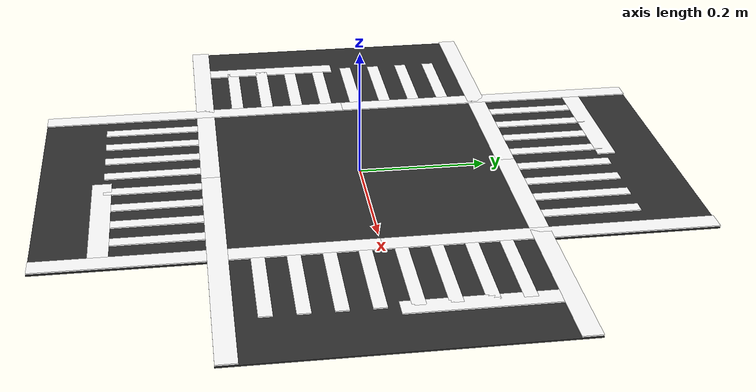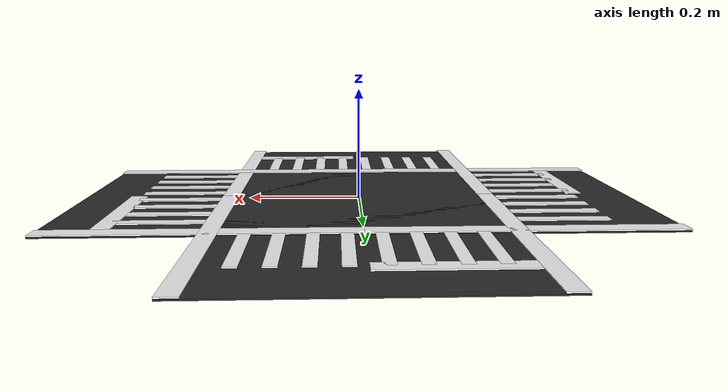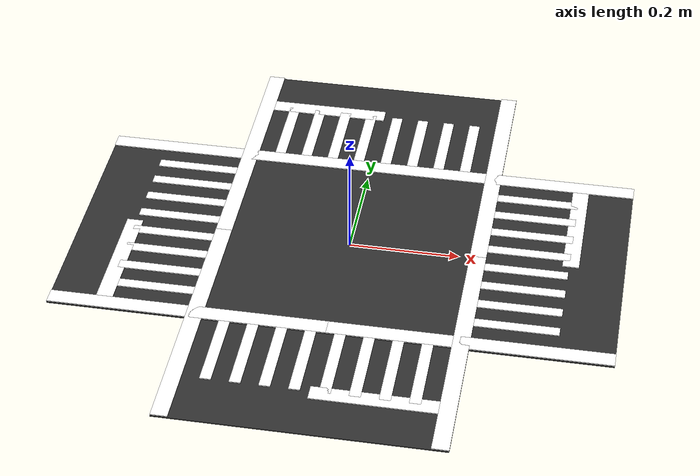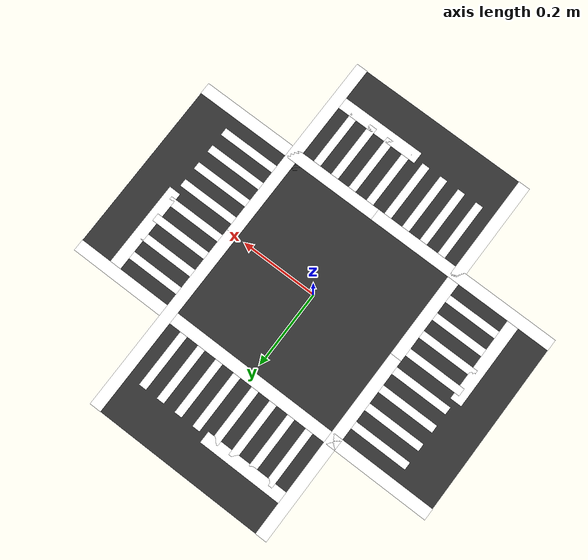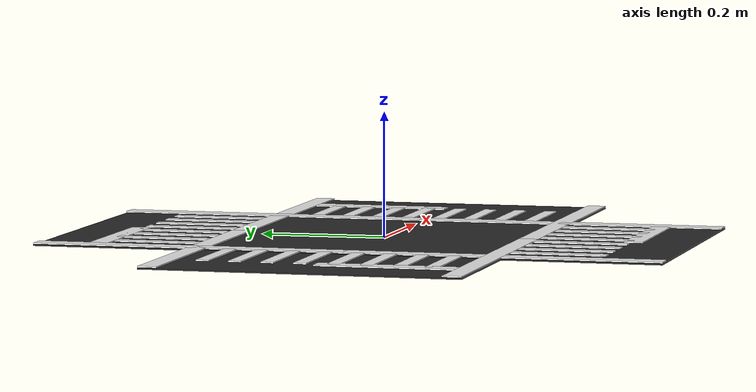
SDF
<?xml version="1.0"?>
<sdf version="1.6">
  <model name="track_cross_intersection">
    <static>true</static>
    <link name="link">

      <!-- Road surface: East-West arm (1.5 m × 0.5 m) -->
      <visual name="v001">
        <pose>0 0 0.001 0 0 0</pose>
        <geometry><box><size>1.000 0.50000 0.00200</size></box></geometry>
        <material>
          <ambient>0.180 0.180 0.180 1</ambient>
          <diffuse>0.180 0.180 0.180 1</diffuse>
          <specular>0.05 0.05 0.05 1</specular>
        </material>
      </visual>

      <!-- Road surface: North-South arm (0.5 m × 1.5 m) -->
      <visual name="v002">
        <pose>0 0 0.001 0 0 0</pose>
        <geometry><box><size>0.50000 1.0 0.00200</size></box></geometry>
        <material>
          <ambient>0.180 0.180 0.180 1</ambient>
          <diffuse>0.180 0.180 0.180 1</diffuse>
          <specular>0.05 0.05 0.05 1</specular>
        </material>
      </visual>

      <!-- North arm sidelines (run N-S along x = ±0.235) -->
      <visual name="v003"><pose>-0.235  0.250 0.004 0 0 0</pose><geometry><box><size>0.030 0.500 0.002</size></box></geometry><material><ambient>1 1 1 1</ambient><diffuse>1 1 1 1</diffuse><specular>0.1 0.1 0.1 1</specular></material></visual>
      <visual name="v004"><pose> 0.235  0.250 0.004 0 0 0</pose><geometry><box><size>0.030 0.500 0.002</size></box></geometry><material><ambient>1 1 1 1</ambient><diffuse>1 1 1 1</diffuse><specular>0.1 0.1 0.1 1</specular></material></visual>

      <!-- South arm sidelines -->
      <visual name="v005"><pose>-0.235 -0.250 0.004 0 0 0</pose><geometry><box><size>0.030 0.500 0.002</size></box></geometry><material><ambient>1 1 1 1</ambient><diffuse>1 1 1 1</diffuse><specular>0.1 0.1 0.1 1</specular></material></visual>
      <visual name="v006"><pose> 0.235 -0.250 0.004 0 0 0</pose><geometry><box><size>0.030 0.500 0.002</size></box></geometry><material><ambient>1 1 1 1</ambient><diffuse>1 1 1 1</diffuse><specular>0.1 0.1 0.1 1</specular></material></visual>

      <!-- East arm sidelines (run E-W along y = ±0.235) -->
      <visual name="v007"><pose> 0.250  0.235 0.004 0 0 0</pose><geometry><box><size>0.500 0.030 0.002</size></box></geometry><material><ambient>1 1 1 1</ambient><diffuse>1 1 1 1</diffuse><specular>0.1 0.1 0.1 1</specular></material></visual>
      <visual name="v008"><pose> 0.250 -0.235 0.004 0 0 0</pose><geometry><box><size>0.500 0.030 0.002</size></box></geometry><material><ambient>1 1 1 1</ambient><diffuse>1 1 1 1</diffuse><specular>0.1 0.1 0.1 1</specular></material></visual>

      <!-- West arm sidelines -->
      <visual name="v009"><pose>-0.250  0.235 0.004 0 0 0</pose><geometry><box><size>0.500 0.030 0.002</size></box></geometry><material><ambient>1 1 1 1</ambient><diffuse>1 1 1 1</diffuse><specular>0.1 0.1 0.1 1</specular></material></visual>
      <visual name="v010"><pose>-0.250 -0.235 0.004 0 0 0</pose><geometry><box><size>0.500 0.030 0.002</size></box></geometry><material><ambient>1 1 1 1</ambient><diffuse>1 1 1 1</diffuse><specular>0.1 0.1 0.1 1</specular></material></visual>

      <!-- North arm — stripes run E-W (perpendicular to N-S travel) -->
      <visual name="v011"><pose>-0.179  0.325 0.004 0 0 1.5708</pose><geometry><box><size>0.150 0.020 0.002</size></box></geometry><material><ambient>1 1 1 1</ambient><diffuse>1 1 1 1</diffuse><specular>0.1 0.1 0.1 1</specular></material></visual>
      <visual name="v012"><pose>-0.128  0.325 0.004 0 0 1.5708</pose><geometry><box><size>0.150 0.020 0.002</size></box></geometry><material><ambient>1 1 1 1</ambient><diffuse>1 1 1 1</diffuse><specular>0.1 0.1 0.1 1</specular></material></visual>
      <visual name="v013"><pose>-0.077  0.325 0.004 0 0 1.5708</pose><geometry><box><size>0.150 0.020 0.002</size></box></geometry><material><ambient>1 1 1 1</ambient><diffuse>1 1 1 1</diffuse><specular>0.1 0.1 0.1 1</specular></material></visual>
      <visual name="v014"><pose>-0.026  0.325 0.004 0 0 1.5708</pose><geometry><box><size>0.150 0.020 0.002</size></box></geometry><material><ambient>1 1 1 1</ambient><diffuse>1 1 1 1</diffuse><specular>0.1 0.1 0.1 1</specular></material></visual>
      <visual name="v015"><pose> 0.026  0.325 0.004 0 0 1.5708</pose><geometry><box><size>0.150 0.020 0.002</size></box></geometry><material><ambient>1 1 1 1</ambient><diffuse>1 1 1 1</diffuse><specular>0.1 0.1 0.1 1</specular></material></visual>
      <visual name="v016"><pose> 0.077  0.325 0.004 0 0 1.5708</pose><geometry><box><size>0.150 0.020 0.002</size></box></geometry><material><ambient>1 1 1 1</ambient><diffuse>1 1 1 1</diffuse><specular>0.1 0.1 0.1 1</specular></material></visual>
      <visual name="v017"><pose> 0.128  0.325 0.004 0 0 1.5708</pose><geometry><box><size>0.150 0.020 0.002</size></box></geometry><material><ambient>1 1 1 1</ambient><diffuse>1 1 1 1</diffuse><specular>0.1 0.1 0.1 1</specular></material></visual>
      <visual name="v018"><pose> 0.179  0.325 0.004 0 0 1.5708</pose><geometry><box><size>0.150 0.020 0.002</size></box></geometry><material><ambient>1 1 1 1</ambient><diffuse>1 1 1 1</diffuse><specular>0.1 0.1 0.1 1</specular></material></visual>
      <visual name="v019"><pose>-0.110 0.4025 0.004 0 0 0</pose><geometry><box><size>0.220 0.030 0.002</size></box></geometry><material><ambient>1 1 1 1</ambient><diffuse>1 1 1 1</diffuse><specular>0.1 0.1 0.1 1</specular></material></visual>

      <!-- South arm — mirror of North (y negated) -->
      <visual name="v020"><pose>-0.179 -0.325 0.004 0 0 1.5708</pose><geometry><box><size>0.150 0.020 0.002</size></box></geometry><material><ambient>1 1 1 1</ambient><diffuse>1 1 1 1</diffuse><specular>0.1 0.1 0.1 1</specular></material></visual>
      <visual name="v021"><pose>-0.128 -0.325 0.004 0 0 1.5708</pose><geometry><box><size>0.150 0.020 0.002</size></box></geometry><material><ambient>1 1 1 1</ambient><diffuse>1 1 1 1</diffuse><specular>0.1 0.1 0.1 1</specular></material></visual>
      <visual name="v022"><pose>-0.077 -0.325 0.004 0 0 1.5708</pose><geometry><box><size>0.150 0.020 0.002</size></box></geometry><material><ambient>1 1 1 1</ambient><diffuse>1 1 1 1</diffuse><specular>0.1 0.1 0.1 1</specular></material></visual>
      <visual name="v023"><pose>-0.026 -0.325 0.004 0 0 1.5708</pose><geometry><box><size>0.150 0.020 0.002</size></box></geometry><material><ambient>1 1 1 1</ambient><diffuse>1 1 1 1</diffuse><specular>0.1 0.1 0.1 1</specular></material></visual>
      <visual name="v024"><pose> 0.026 -0.325 0.004 0 0 1.5708</pose><geometry><box><size>0.150 0.020 0.002</size></box></geometry><material><ambient>1 1 1 1</ambient><diffuse>1 1 1 1</diffuse><specular>0.1 0.1 0.1 1</specular></material></visual>
      <visual name="v025"><pose> 0.077 -0.325 0.004 0 0 1.5708</pose><geometry><box><size>0.150 0.020 0.002</size></box></geometry><material><ambient>1 1 1 1</ambient><diffuse>1 1 1 1</diffuse><specular>0.1 0.1 0.1 1</specular></material></visual>
      <visual name="v026"><pose> 0.128 -0.325 0.004 0 0 1.5708</pose><geometry><box><size>0.150 0.020 0.002</size></box></geometry><material><ambient>1 1 1 1</ambient><diffuse>1 1 1 1</diffuse><specular>0.1 0.1 0.1 1</specular></material></visual>
      <visual name="v027"><pose> 0.179 -0.325 0.004 0 0 1.5708</pose><geometry><box><size>0.150 0.020 0.002</size></box></geometry><material><ambient>1 1 1 1</ambient><diffuse>1 1 1 1</diffuse><specular>0.1 0.1 0.1 1</specular></material></visual>
      <visual name="v047"><pose>0.110 -0.4025 0.004 0 0 0</pose><geometry><box><size>0.220 0.030 0.002</size></box></geometry><material><ambient>1 1 1 1</ambient><diffuse>1 1 1 1</diffuse><specular>0.1 0.1 0.1 1</specular></material></visual>

      <!-- East arm — stripes run N-S (perpendicular to E-W travel) -->
      <visual name="v029"><pose>0.325 -0.179 0.004 0 0 0</pose><geometry><box><size>0.150 0.020 0.002</size></box></geometry><material><ambient>1 1 1 1</ambient><diffuse>1 1 1 1</diffuse><specular>0.1 0.1 0.1 1</specular></material></visual>
      <visual name="v030"><pose>0.325 -0.128 0.004 0 0 0</pose><geometry><box><size>0.150 0.020 0.002</size></box></geometry><material><ambient>1 1 1 1</ambient><diffuse>1 1 1 1</diffuse><specular>0.1 0.1 0.1 1</specular></material></visual>
      <visual name="v031"><pose>0.325 -0.077 0.004 0 0 0</pose><geometry><box><size>0.150 0.020 0.002</size></box></geometry><material><ambient>1 1 1 1</ambient><diffuse>1 1 1 1</diffuse><specular>0.1 0.1 0.1 1</specular></material></visual>
      <visual name="v032"><pose>0.325 -0.026 0.004 0 0 0</pose><geometry><box><size>0.150 0.020 0.002</size></box></geometry><material><ambient>1 1 1 1</ambient><diffuse>1 1 1 1</diffuse><specular>0.1 0.1 0.1 1</specular></material></visual>
      <visual name="v033"><pose>0.325  0.026 0.004 0 0 0</pose><geometry><box><size>0.150 0.020 0.002</size></box></geometry><material><ambient>1 1 1 1</ambient><diffuse>1 1 1 1</diffuse><specular>0.1 0.1 0.1 1</specular></material></visual>
      <visual name="v034"><pose>0.325  0.077 0.004 0 0 0</pose><geometry><box><size>0.150 0.020 0.002</size></box></geometry><material><ambient>1 1 1 1</ambient><diffuse>1 1 1 1</diffuse><specular>0.1 0.1 0.1 1</specular></material></visual>
      <visual name="v035"><pose>0.325  0.128 0.004 0 0 0</pose><geometry><box><size>0.150 0.020 0.002</size></box></geometry><material><ambient>1 1 1 1</ambient><diffuse>1 1 1 1</diffuse><specular>0.1 0.1 0.1 1</specular></material></visual>
      <visual name="v036"><pose>0.325  0.179 0.004 0 0 0</pose><geometry><box><size>0.150 0.020 0.002</size></box></geometry><material><ambient>1 1 1 1</ambient><diffuse>1 1 1 1</diffuse><specular>0.1 0.1 0.1 1</specular></material></visual>
      <visual name="v048"><pose>0.4025 0.110 0.004 0 0 1.5708</pose><geometry><box><size>0.220 0.030 0.002</size></box></geometry><material><ambient>1 1 1 1</ambient><diffuse>1 1 1 1</diffuse><specular>0.1 0.1 0.1 1</specular></material></visual>

      <!-- West arm — mirror of East (x negated) -->
      <visual name="v038"><pose>-0.325 -0.179 0.004 0 0 0</pose><geometry><box><size>0.150 0.020 0.002</size></box></geometry><material><ambient>1 1 1 1</ambient><diffuse>1 1 1 1</diffuse><specular>0.1 0.1 0.1 1</specular></material></visual>
      <visual name="v039"><pose>-0.325 -0.128 0.004 0 0 0</pose><geometry><box><size>0.150 0.020 0.002</size></box></geometry><material><ambient>1 1 1 1</ambient><diffuse>1 1 1 1</diffuse><specular>0.1 0.1 0.1 1</specular></material></visual>
      <visual name="v040"><pose>-0.325 -0.077 0.004 0 0 0</pose><geometry><box><size>0.150 0.020 0.002</size></box></geometry><material><ambient>1 1 1 1</ambient><diffuse>1 1 1 1</diffuse><specular>0.1 0.1 0.1 1</specular></material></visual>
      <visual name="v041"><pose>-0.325 -0.026 0.004 0 0 0</pose><geometry><box><size>0.150 0.020 0.002</size></box></geometry><material><ambient>1 1 1 1</ambient><diffuse>1 1 1 1</diffuse><specular>0.1 0.1 0.1 1</specular></material></visual>
      <visual name="v042"><pose>-0.325  0.026 0.004 0 0 0</pose><geometry><box><size>0.150 0.020 0.002</size></box></geometry><material><ambient>1 1 1 1</ambient><diffuse>1 1 1 1</diffuse><specular>0.1 0.1 0.1 1</specular></material></visual>
      <visual name="v043"><pose>-0.325  0.077 0.004 0 0 0</pose><geometry><box><size>0.150 0.020 0.002</size></box></geometry><material><ambient>1 1 1 1</ambient><diffuse>1 1 1 1</diffuse><specular>0.1 0.1 0.1 1</specular></material></visual>
      <visual name="v044"><pose>-0.325  0.128 0.004 0 0 0</pose><geometry><box><size>0.150 0.020 0.002</size></box></geometry><material><ambient>1 1 1 1</ambient><diffuse>1 1 1 1</diffuse><specular>0.1 0.1 0.1 1</specular></material></visual>
      <visual name="v045"><pose>-0.325  0.179 0.004 0 0 0</pose><geometry><box><size>0.150 0.020 0.002</size></box></geometry><material><ambient>1 1 1 1</ambient><diffuse>1 1 1 1</diffuse><specular>0.1 0.1 0.1 1</specular></material></visual>
      <visual name="v049"><pose>-0.4025 -0.110 0.004 0 0 1.5708</pose><geometry><box><size>0.220 0.030 0.002</size></box></geometry><material><ambient>1 1 1 1</ambient><diffuse>1 1 1 1</diffuse><specular>0.1 0.1 0.1 1</specular></material></visual>

    </link>
  </model>
</sdf>
